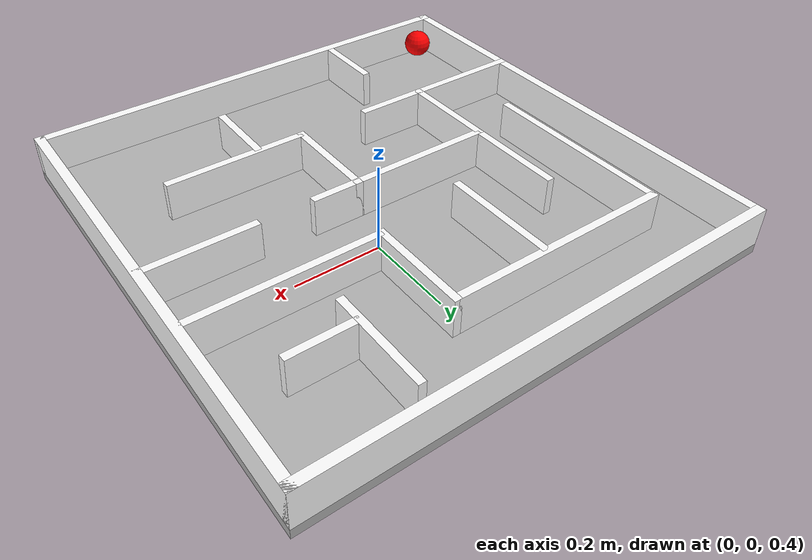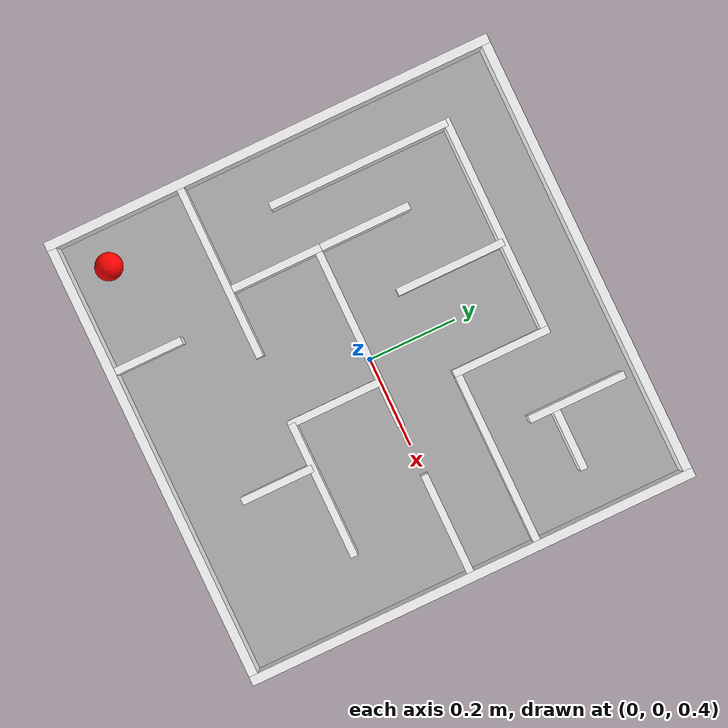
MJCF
<mujoco model="labyrinth">
    <compiler angle="degree"/>
    <option timestep="0.02"/>

    <!-- World -->
    <worldbody>
        <!-- Board -->
        <body name="board" pos="0 0 0.5">
            <inertial pos="0 0 0" mass="5" diaginertia="1 1 1"/>
            <joint name="tilt_x" pos="0 0 0" axis="1 0 0" range="-4 4" damping="2"/>
            <joint name="tilt_y" pos="0 0 0" axis="0 1 0" range="-4 4" damping="2"/>
            <geom name="board_geom" type="box" size="0.5 0.5 0.01" rgba="0.7 0.7 0.7 1"/>

            <!-- Walls -->
            <geom name="wall_left" type="box" size="0.01 0.5 0.04" pos="-0.49 0 0.05" rgba="255 255 255 1" mass="0"/>
            <geom name="wall_right" type="box" size="0.01 0.5 0.04" pos="0.49 0 0.05" rgba="255 255 255 1" mass="0"/>
            <geom name="wall_top" type="box" size="0.5 0.01 0.04" pos="0 0.49 0.05" rgba="255 255 255 1" mass="0"/>
            <geom name="wall_bottom" type="box" size="0.5 0.01 0.04" pos="0 -0.49 0.05" rgba="255 255 255 1" mass="0"/>
            <geom name="wall_maze1" type="box" size="0.008 0.08 0.04" pos="-0.20 -0.41 0.05" rgba="255 255 255 1"
                  mass="0"/>
            <geom name="wall_maze2" type="box" size="0.008 0.08 0.04" pos="0.15 -0.28 0.05" rgba="255 255 255 1"
                  mass="0"/>
            <geom name="wall_maze3" type="box" size="0.20 0.008 0.04" pos="-0.30 -0.20 0.05" rgba="255 255 255 1"
                  mass="0"/>
            <geom name="wall_maze4" type="box" size="0.15 0.008 0.04" pos="0.20 -0.20 0.05" rgba="255 255 255 1"
                  mass="0"/>
            <geom name="wall_maze5" type="box" size="0.008 0.108 0.04" pos="-0.25 -0.10 0.05" rgba="255 255 255 1"
                  mass="0"/>
            <geom name="wall_maze6" type="box" size="0.008 0.108 0.04" pos="0.05 -0.10 0.05" rgba="255 255 255 1"
                  mass="0"/>
            <geom name="wall_maze7" type="box" size="0.20 0.008 0.04" pos="-0.05 0.0 0.05" rgba="255 255 255 1"
                  mass="0"/>
            <geom name="wall_maze8" type="box" size="0.12 0.008 0.04" pos="0.38 0.0 0.05" rgba="255 255 255 1"
                  mass="0"/>
            <geom name="wall_maze9" type="box" size="0.008 0.20 0.04" pos="-0.37 0.15 0.05" rgba="255 255 255 1"
                  mass="0"/>
            <geom name="wall_maze10" type="box" size="0.008 0.108 0.04" pos="-0.25 0.10 0.05" rgba="255 255 255 1"
                  mass="0"/>
            <geom name="wall_maze11" type="box" size="0.008 0.12 0.04" pos="-0.10 0.23 0.05" rgba="255 255 255 1"
                  mass="0"/>
            <geom name="wall_maze12" type="box" size="0.008 0.108 0.04" pos="0.10 0.25 0.05" rgba="255 255 255 1"
                  mass="0"/>
            <geom name="wall_maze13" type="box" size="0.20 0.008 0.04" pos="0.30 0.15 0.05" rgba="255 255 255 1"
                  mass="0"/>
            <geom name="wall_maze14" type="box" size="0.008 0.108 0.04" pos="0.25 0.35 0.05" rgba="255 255 255 1"
                  mass="0"/>
            <geom name="wall_maze15" type="box" size="0.07 0.008 0.04" pos="0.32 0.30 0.05" rgba="255 255 255 1"
                  mass="0"/>
            <geom name="wall_maze16" type="box" size="0.238 0.008 0.04" pos="-0.14 0.35 0.05" rgba="255 255 255 1"
                  mass="0"/>

            <!-- Path corners-->

            <!-- Intermediate goals -->
            <site name="goal_1" pos="0.20 -0.42 0.025" type="box" size="0.03 0.07 0.01" rgba="1 1 0 0"/>
            <site name="goal_2" pos="0.20 0.05 0.025" type="box" size="0.07 0.03 0.01" rgba="1 1 0 0"/>
            <site name="goal_3" pos="-0.25 0.27 0.025" type="box" size="0.05 0.05 0.01" rgba="1 1 0 0"/>
            <site name="goal_4" pos="-0.42 0.42 0.025" type="box" size="0.05 0.05 0.01" rgba="1 1 0 0"/>
            <site name="goal_5" pos="0.28 0.20 0.025" type="box" size="0.05 0.03 0.01" rgba="1 1 0 0"/>

            <!-- End Goal -->
            <site name="end_goal" pos="0.40 0.40 0.025" type="box" size="0.05 0.05 0.01" rgba="0 0 1 0"/>
        </body>

        <!-- Ball in Lower Left Corner-->
        <body name="ball" pos="-0.40 -0.40 0.58">
            <joint name="free_ball" type="free"/>
            <geom name="ball_geom" type="sphere" size="0.03" mass="0.01" rgba="1 0 0 1"/>
        </body>

        <!-- Camera -->
        <camera name="top_view" pos="0 0 1.75" xyaxes="1 0 0 0 1 0"/>
    </worldbody>

    <!-- Actuators (Instant Tilt) -->
    <actuator>
        <motor name="tilt_x_actuator" joint="tilt_x" ctrlrange="-1 1"/>
        <motor name="tilt_y_actuator" joint="tilt_y" ctrlrange="-1 1"/>
    </actuator>
</mujoco>
